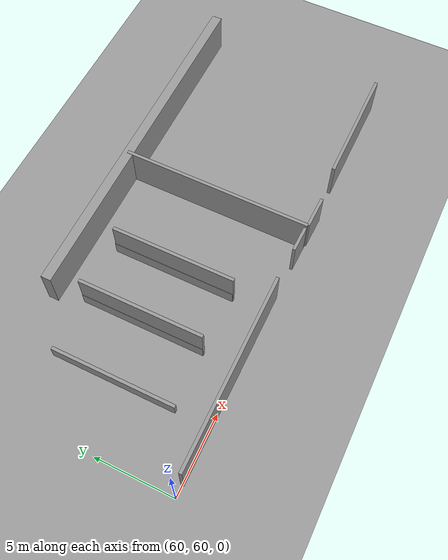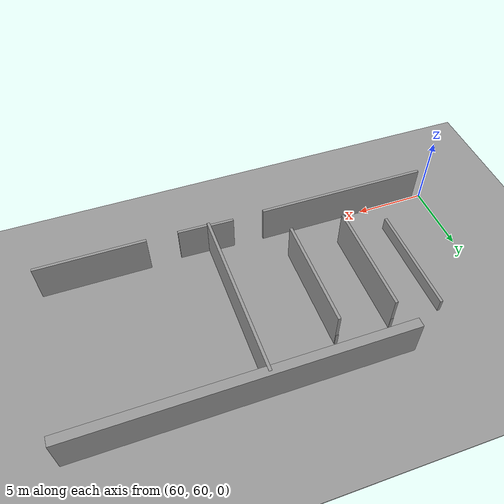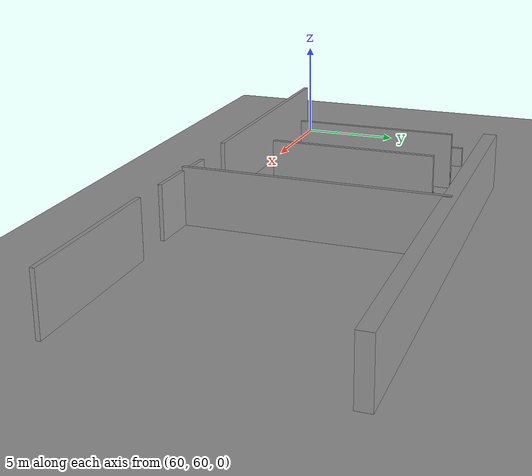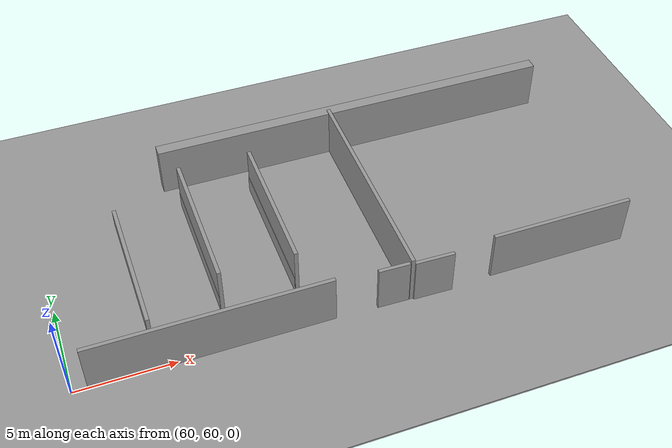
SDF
<sdf version="1.7">
 <world name="default">
  <model name="ground_plane">
   <static>1</static>
   <link name="link">
    <collision name="collision">
     <geometry><plane><normal>0 0 1</normal><size>100 100</size></plane></geometry>
     <surface><friction><ode><mu>100</mu><mu2>50</mu2></ode></friction></surface>
    </collision>
    <visual name="visual">
     <cast_shadows>0</cast_shadows>
     <geometry><plane><normal>0 0 1</normal><size>100 100</size></plane></geometry>
     <material>
      <script><uri>file://media/materials/scripts/gazebo.material</uri><name>Gazebo/Grey</name></script>
     </material>
    </visual>
   </link>
  </model>
  <model name="ground_plane_2">
   <static>1</static>
   <link name="link">
    <collision name="collision">
     <geometry><plane><normal>0 0 1</normal><size>100 100</size></plane></geometry>
     <surface><friction><ode><mu>100</mu><mu2>50</mu2></ode></friction></surface>
    </collision>
    <visual name="visual">
     <cast_shadows>0</cast_shadows>
     <geometry><plane><normal>0 0 1</normal><size>100 100</size></plane></geometry>
     <material>
      <script><uri>file://media/materials/scripts/gazebo.material</uri><name>Gazebo/Grey</name></script>
     </material>
    </visual>
   </link>
   <pose>99.3631 72.3911 0 0 -0 0</pose>
  </model>
  <model name="grey_wall_long_term_clone_0_clone">
   <link name="link">
    <pose>-1.74587 -0.378849 1.37589 0 -0 0</pose>
    <inertial>
     <inertia><ixx>0</ixx><ixy>0</ixy><ixz>0</ixz><iyy>0</iyy><iyz>0</iyz><izz>0</izz></inertia>
     <mass>0</mass>
    </inertial>
    <visual name="visual">
     <cast_shadows>0</cast_shadows>
     <geometry><box><size>22.1596 0.642976 2.8</size></box></geometry>
     <material>
      <script>
       <uri>model://grey_wall/materials/scripts</uri>
       <uri>model://grey_wall/materials/textures</uri>
       <name>vrc/grey_wall</name>
      </script>
      <shader type="pixel"><normal_map>__default__</normal_map></shader>
      <ambient>1 1 1 1</ambient>
      <diffuse>1 1 1 1</diffuse>
      <specular>0 0 0 1</specular>
      <emissive>0 0 0 1</emissive>
     </material>
    </visual>
    <collision name="collision">
     <geometry><box><size>22.1596 0.642976 2.8</size></box></geometry>
     <surface>
      <friction>
       <ode><mu>1</mu><mu2>1</mu2><fdir1>0 0 0</fdir1><slip1>0</slip1><slip2>0</slip2></ode>
       <torsional>
        <coefficient>1</coefficient>
        <patch_radius>0</patch_radius>
        <surface_radius>0</surface_radius>
        <use_patch_radius>1</use_patch_radius>
        <ode><slip>0</slip></ode>
       </torsional>
      </friction>
      <bounce><restitution_coefficient>0</restitution_coefficient><threshold>1e+06</threshold></bounce>
      <contact>
       <collide_without_contact>0</collide_without_contact>
       <collide_without_contact_bitmask>1</collide_without_contact_bitmask>
       <collide_bitmask>1</collide_bitmask>
       <ode>
        <soft_cfm>0</soft_cfm>
        <soft_erp>0.2</soft_erp>
        <kp>1e+13</kp>
        <kd>1</kd>
        <max_vel>0.01</max_vel>
        <min_depth>0</min_depth>
       </ode>
       <bullet>
        <split_impulse>1</split_impulse>
        <split_impulse_penetration_threshold>-0.01</split_impulse_penetration_threshold>
        <soft_cfm>0</soft_cfm>
        <soft_erp>0.2</soft_erp>
        <kp>1e+13</kp>
        <kd>1</kd>
       </bullet>
      </contact>
     </surface>
    </collision>
   </link>
   <static>1</static>
   <pose>79.8463 72.1693 0 0 -0 0</pose>
  </model>
  <model name="grey_wall_12m_vertial_1_clone_0">
   <link name="link">
    <pose>0.289112 -0.003891 1.4 0 0 -1.5701</pose>
    <inertial>
     <inertia><ixx>0</ixx><ixy>0</ixy><ixz>0</ixz><iyy>0</iyy><iyz>0</iyz><izz>0</izz></inertia>
     <mass>0</mass>
    </inertial>
    <visual name="visual">
     <cast_shadows>0</cast_shadows>
     <geometry><box><size>12.0527 0.2 2.8</size></box></geometry>
     <material>
      <script>
       <uri>model://grey_wall/materials/scripts</uri>
       <uri>model://grey_wall/materials/textures</uri>
       <name>vrc/grey_wall</name>
      </script>
      <shader type="pixel"/>
      <ambient>1 1 1 1</ambient>
      <diffuse>1 1 1 1</diffuse>
      <specular>0 0 0 1</specular>
      <emissive>0 0 0 1</emissive>
     </material>
    </visual>
    <collision name="collision">
     <geometry><box><size>12.0527 0.2 2.8</size></box></geometry>
     <surface>
      <friction>
       <ode><mu>1</mu><mu2>1</mu2><fdir1>0 0 0</fdir1><slip1>0</slip1><slip2>0</slip2></ode>
       <torsional>
        <coefficient>1</coefficient>
        <patch_radius>0</patch_radius>
        <surface_radius>0</surface_radius>
        <use_patch_radius>1</use_patch_radius>
        <ode><slip>0</slip></ode>
       </torsional>
      </friction>
      <bounce><restitution_coefficient>0</restitution_coefficient><threshold>1e+06</threshold></bounce>
      <contact>
       <collide_without_contact>0</collide_without_contact>
       <collide_without_contact_bitmask>1</collide_without_contact_bitmask>
       <collide_bitmask>1</collide_bitmask>
       <ode>
        <soft_cfm>0</soft_cfm>
        <soft_erp>0.2</soft_erp>
        <kp>1e+13</kp>
        <kd>1</kd>
        <max_vel>0.01</max_vel>
        <min_depth>0</min_depth>
       </ode>
       <bullet>
        <split_impulse>1</split_impulse>
        <split_impulse_penetration_threshold>-0.01</split_impulse_penetration_threshold>
        <soft_cfm>0</soft_cfm>
        <soft_erp>0.2</soft_erp>
        <kp>1e+13</kp>
        <kd>1</kd>
       </bullet>
      </contact>
     </surface>
    </collision>
   </link>
   <static>1</static>
   <pose>76.3792 65.8166 0 0 -0 0</pose>
  </model>
  <model name="grey_wall_12m_clone_1">
   <link name="link">
    <pose>0.289112 -0.003891 1.4 0 -0 0</pose>
    <inertial>
     <inertia><ixx>0</ixx><ixy>0</ixy><ixz>0</ixz><iyy>0</iyy><iyz>0</iyz><izz>0</izz></inertia>
     <mass>0</mass>
    </inertial>
    <visual name="visual">
     <cast_shadows>0</cast_shadows>
     <geometry><box><size>12.0527 0.2 2.8</size></box></geometry>
     <material>
      <script>
       <uri>model://grey_wall/materials/scripts</uri>
       <uri>model://grey_wall/materials/textures</uri>
       <name>vrc/grey_wall</name>
      </script>
      <shader type="pixel"/>
      <ambient>1 1 1 1</ambient>
      <diffuse>1 1 1 1</diffuse>
      <specular>0 0 0 1</specular>
      <emissive>0 0 0 1</emissive>
     </material>
    </visual>
    <collision name="collision">
     <geometry><box><size>12.0527 0.2 2.8</size></box></geometry>
     <surface>
      <friction>
       <ode><mu>1</mu><mu2>1</mu2><fdir1>0 0 0</fdir1><slip1>0</slip1><slip2>0</slip2></ode>
       <torsional>
        <coefficient>1</coefficient>
        <patch_radius>0</patch_radius>
        <surface_radius>0</surface_radius>
        <use_patch_radius>1</use_patch_radius>
        <ode><slip>0</slip></ode>
       </torsional>
      </friction>
      <bounce><restitution_coefficient>0</restitution_coefficient><threshold>1e+06</threshold></bounce>
      <contact>
       <collide_without_contact>0</collide_without_contact>
       <collide_without_contact_bitmask>1</collide_without_contact_bitmask>
       <collide_bitmask>1</collide_bitmask>
       <ode>
        <soft_cfm>0</soft_cfm>
        <soft_erp>0.2</soft_erp>
        <kp>1e+13</kp>
        <kd>1</kd>
        <max_vel>0.01</max_vel>
        <min_depth>0</min_depth>
       </ode>
       <bullet>
        <split_impulse>1</split_impulse>
        <split_impulse_penetration_threshold>-0.01</split_impulse_penetration_threshold>
        <soft_cfm>0</soft_cfm>
        <soft_erp>0.2</soft_erp>
        <kp>1e+13</kp>
        <kd>1</kd>
       </bullet>
      </contact>
     </surface>
    </collision>
   </link>
   <static>1</static>
   <pose>66.482 59.9942 0 0 -0 0</pose>
  </model>
  <model name="grey_wall_low_clone_7">
   <link name="link">
    <pose>0.546134 -0.568384 0.521109 0 -0 0</pose>
    <inertial>
     <inertia><ixx>0</ixx><ixy>0</ixy><ixz>0</ixz><iyy>0</iyy><iyz>0</iyz><izz>0</izz></inertia>
     <mass>0</mass>
    </inertial>
    <visual name="visual">
     <cast_shadows>0</cast_shadows>
     <geometry><box><size>7.82417 0.2 1.03493</size></box></geometry>
     <material>
      <script>
       <uri>model://grey_wall/materials/scripts</uri>
       <uri>model://grey_wall/materials/textures</uri>
       <name>vrc/grey_wall</name>
      </script>
      <shader type="pixel"/>
      <ambient>1 1 1 1</ambient>
      <diffuse>1 1 1 1</diffuse>
      <specular>0 0 0 1</specular>
      <emissive>0 0 0 1</emissive>
     </material>
    </visual>
    <collision name="collision">
     <geometry><box><size>7.82417 0.2 1.03493</size></box></geometry>
     <surface>
      <friction>
       <ode><mu>1</mu><mu2>1</mu2><fdir1>0 0 0</fdir1><slip1>0</slip1><slip2>0</slip2></ode>
       <torsional>
        <coefficient>1</coefficient>
        <patch_radius>0</patch_radius>
        <surface_radius>0</surface_radius>
        <use_patch_radius>1</use_patch_radius>
        <ode><slip>0</slip></ode>
       </torsional>
      </friction>
      <bounce><restitution_coefficient>0</restitution_coefficient><threshold>1e+06</threshold></bounce>
      <contact>
       <collide_without_contact>0</collide_without_contact>
       <collide_without_contact_bitmask>1</collide_without_contact_bitmask>
       <collide_bitmask>1</collide_bitmask>
       <ode>
        <soft_cfm>0</soft_cfm>
        <soft_erp>0.2</soft_erp>
        <kp>1e+13</kp>
        <kd>1</kd>
        <max_vel>0.01</max_vel>
        <min_depth>0</min_depth>
       </ode>
       <bullet>
        <split_impulse>1</split_impulse>
        <split_impulse_penetration_threshold>-0.01</split_impulse_penetration_threshold>
        <soft_cfm>0</soft_cfm>
        <soft_erp>0.2</soft_erp>
        <kp>1e+13</kp>
        <kd>1</kd>
       </bullet>
      </contact>
     </surface>
    </collision>
   </link>
   <static>1</static>
   <pose>64.6561 66.5667 -0 0 0 -1.56746</pose>
  </model>
  <model name="grey_wall_low_clone_8">
   <link name="link">
    <pose>0.546134 -0.568384 0.521109 0 -0 0</pose>
    <inertial>
     <inertia><ixx>0</ixx><ixy>0</ixy><ixz>0</ixz><iyy>0</iyy><iyz>0</iyz><izz>0</izz></inertia>
     <mass>0</mass>
    </inertial>
    <visual name="visual">
     <cast_shadows>0</cast_shadows>
     <geometry><box><size>7.82417 0.2 1.03493</size></box></geometry>
     <material>
      <script>
       <uri>model://grey_wall/materials/scripts</uri>
       <uri>model://grey_wall/materials/textures</uri>
       <name>vrc/grey_wall</name>
      </script>
      <shader type="pixel"/>
      <ambient>1 1 1 1</ambient>
      <diffuse>1 1 1 1</diffuse>
      <specular>0 0 0 1</specular>
      <emissive>0 0 0 1</emissive>
     </material>
    </visual>
    <collision name="collision">
     <geometry><box><size>7.82417 0.2 1.03493</size></box></geometry>
     <surface>
      <friction>
       <ode><mu>1</mu><mu2>1</mu2><fdir1>0 0 0</fdir1><slip1>0</slip1><slip2>0</slip2></ode>
       <torsional>
        <coefficient>1</coefficient>
        <patch_radius>0</patch_radius>
        <surface_radius>0</surface_radius>
        <use_patch_radius>1</use_patch_radius>
        <ode><slip>0</slip></ode>
       </torsional>
      </friction>
      <bounce><restitution_coefficient>0</restitution_coefficient><threshold>1e+06</threshold></bounce>
      <contact>
       <collide_without_contact>0</collide_without_contact>
       <collide_without_contact_bitmask>1</collide_without_contact_bitmask>
       <collide_bitmask>1</collide_bitmask>
       <ode>
        <soft_cfm>0</soft_cfm>
        <soft_erp>0.2</soft_erp>
        <kp>1e+13</kp>
        <kd>1</kd>
        <max_vel>0.01</max_vel>
        <min_depth>0</min_depth>
       </ode>
       <bullet>
        <split_impulse>1</split_impulse>
        <split_impulse_penetration_threshold>-0.01</split_impulse_penetration_threshold>
        <soft_cfm>0</soft_cfm>
        <soft_erp>0.2</soft_erp>
        <kp>1e+13</kp>
        <kd>1</kd>
       </bullet>
      </contact>
     </surface>
    </collision>
   </link>
   <static>1</static>
   <pose>68.3116 66.6864 -0 0 0 -1.56746</pose>
  </model>
  <model name="grey_wall_low_clone_9">
   <link name="link">
    <pose>0.546134 -0.568384 0.521109 0 -0 0</pose>
    <inertial>
     <inertia><ixx>0</ixx><ixy>0</ixy><ixz>0</ixz><iyy>0</iyy><iyz>0</iyz><izz>0</izz></inertia>
     <mass>0</mass>
    </inertial>
    <visual name="visual">
     <cast_shadows>0</cast_shadows>
     <geometry><box><size>7.82417 0.2 1.03493</size></box></geometry>
     <material>
      <script>
       <uri>model://grey_wall/materials/scripts</uri>
       <uri>model://grey_wall/materials/textures</uri>
       <name>vrc/grey_wall</name>
      </script>
      <shader type="pixel"/>
      <ambient>1 1 1 1</ambient>
      <diffuse>1 1 1 1</diffuse>
      <specular>0 0 0 1</specular>
      <emissive>0 0 0 1</emissive>
     </material>
    </visual>
    <collision name="collision">
     <geometry><box><size>7.82417 0.2 1.03493</size></box></geometry>
     <surface>
      <friction>
       <ode><mu>1</mu><mu2>1</mu2><fdir1>0 0 0</fdir1><slip1>0</slip1><slip2>0</slip2></ode>
       <torsional>
        <coefficient>1</coefficient>
        <patch_radius>0</patch_radius>
        <surface_radius>0</surface_radius>
        <use_patch_radius>1</use_patch_radius>
        <ode><slip>0</slip></ode>
       </torsional>
      </friction>
      <bounce><restitution_coefficient>0</restitution_coefficient><threshold>1e+06</threshold></bounce>
      <contact>
       <collide_without_contact>0</collide_without_contact>
       <collide_without_contact_bitmask>1</collide_without_contact_bitmask>
       <collide_bitmask>1</collide_bitmask>
       <ode>
        <soft_cfm>0</soft_cfm>
        <soft_erp>0.2</soft_erp>
        <kp>1e+13</kp>
        <kd>1</kd>
        <max_vel>0.01</max_vel>
        <min_depth>0</min_depth>
       </ode>
       <bullet>
        <split_impulse>1</split_impulse>
        <split_impulse_penetration_threshold>-0.01</split_impulse_penetration_threshold>
        <soft_cfm>0</soft_cfm>
        <soft_erp>0.2</soft_erp>
        <kp>1e+13</kp>
        <kd>1</kd>
       </bullet>
      </contact>
     </surface>
    </collision>
   </link>
   <static>1</static>
   <pose>72.0966 66.6291 -0 0 0 -1.56746</pose>
  </model>
  <model name="grey_wall_0_clone_clone_0">
   <static>1</static>
   <link name="link">
    <pose>0 0 1.4 0 -0 0</pose>
    <collision name="collision"><geometry><box><size>7.5 0.2 2.8</size></box></geometry></collision>
    <visual name="visual">
     <cast_shadows>0</cast_shadows>
     <geometry><box><size>7.5 0.2 2.8</size></box></geometry>
     <material>
      <script>
       <uri>model://grey_wall/materials/scripts</uri>
       <uri>model://grey_wall/materials/textures</uri>
       <name>vrc/grey_wall</name>
      </script>
     </material>
    </visual>
   </link>
   <pose>84.7389 59.8988 0 0 -0 0</pose>
  </model>
  <model name="grey_wall_high_clone_8">
   <link name="link">
    <pose>0.546134 -0.568384 0.521109 0 -0 0</pose>
    <inertial>
     <inertia><ixx>0</ixx><ixy>0</ixy><ixz>0</ixz><iyy>0</iyy><iyz>0</iyz><izz>0</izz></inertia>
     <mass>0</mass>
    </inertial>
    <visual name="visual">
     <cast_shadows>0</cast_shadows>
     <geometry><box><size>7.82417 0.2 4.57376</size></box></geometry>
     <material>
      <script>
       <uri>model://grey_wall/materials/scripts</uri>
       <uri>model://grey_wall/materials/textures</uri>
       <name>vrc/grey_wall</name>
      </script>
      <shader type="pixel"/>
      <ambient>1 1 1 1</ambient>
      <diffuse>1 1 1 1</diffuse>
      <specular>0 0 0 1</specular>
      <emissive>0 0 0 1</emissive>
     </material>
    </visual>
    <collision name="collision">
     <geometry><box><size>7.82417 0.2 4.57376</size></box></geometry>
     <surface>
      <friction>
       <ode><mu>1</mu><mu2>1</mu2><fdir1>0 0 0</fdir1><slip1>0</slip1><slip2>0</slip2></ode>
       <torsional>
        <coefficient>1</coefficient>
        <patch_radius>0</patch_radius>
        <surface_radius>0</surface_radius>
        <use_patch_radius>1</use_patch_radius>
        <ode><slip>0</slip></ode>
       </torsional>
      </friction>
      <bounce><restitution_coefficient>0</restitution_coefficient><threshold>1e+06</threshold></bounce>
      <contact>
       <collide_without_contact>0</collide_without_contact>
       <collide_without_contact_bitmask>1</collide_without_contact_bitmask>
       <collide_bitmask>1</collide_bitmask>
       <ode>
        <soft_cfm>0</soft_cfm>
        <soft_erp>0.2</soft_erp>
        <kp>1e+13</kp>
        <kd>1</kd>
        <max_vel>0.01</max_vel>
        <min_depth>0</min_depth>
       </ode>
       <bullet>
        <split_impulse>1</split_impulse>
        <split_impulse_penetration_threshold>-0.01</split_impulse_penetration_threshold>
        <soft_cfm>0</soft_cfm>
        <soft_erp>0.2</soft_erp>
        <kp>1e+13</kp>
        <kd>1</kd>
       </bullet>
      </contact>
     </surface>
    </collision>
   </link>
   <static>1</static>
   <pose>68.3243 66.6751 -0 0 0 -1.56746</pose>
  </model>
  <model name="grey_wall_high_clone_9">
   <link name="link">
    <pose>0.546134 -0.568384 0.521109 0 -0 0</pose>
    <inertial>
     <inertia><ixx>0</ixx><ixy>0</ixy><ixz>0</ixz><iyy>0</iyy><iyz>0</iyz><izz>0</izz></inertia>
     <mass>0</mass>
    </inertial>
    <visual name="visual">
     <cast_shadows>0</cast_shadows>
     <geometry><box><size>7.82417 0.2 4.57376</size></box></geometry>
     <material>
      <script>
       <uri>model://grey_wall/materials/scripts</uri>
       <uri>model://grey_wall/materials/textures</uri>
       <name>vrc/grey_wall</name>
      </script>
      <shader type="pixel"/>
      <ambient>1 1 1 1</ambient>
      <diffuse>1 1 1 1</diffuse>
      <specular>0 0 0 1</specular>
      <emissive>0 0 0 1</emissive>
     </material>
    </visual>
    <collision name="collision">
     <geometry><box><size>7.82417 0.2 4.57376</size></box></geometry>
     <surface>
      <friction>
       <ode><mu>1</mu><mu2>1</mu2><fdir1>0 0 0</fdir1><slip1>0</slip1><slip2>0</slip2></ode>
       <torsional>
        <coefficient>1</coefficient>
        <patch_radius>0</patch_radius>
        <surface_radius>0</surface_radius>
        <use_patch_radius>1</use_patch_radius>
        <ode><slip>0</slip></ode>
       </torsional>
      </friction>
      <bounce><restitution_coefficient>0</restitution_coefficient><threshold>1e+06</threshold></bounce>
      <contact>
       <collide_without_contact>0</collide_without_contact>
       <collide_without_contact_bitmask>1</collide_without_contact_bitmask>
       <collide_bitmask>1</collide_bitmask>
       <ode>
        <soft_cfm>0</soft_cfm>
        <soft_erp>0.2</soft_erp>
        <kp>1e+13</kp>
        <kd>1</kd>
        <max_vel>0.01</max_vel>
        <min_depth>0</min_depth>
       </ode>
       <bullet>
        <split_impulse>1</split_impulse>
        <split_impulse_penetration_threshold>-0.01</split_impulse_penetration_threshold>
        <soft_cfm>0</soft_cfm>
        <soft_erp>0.2</soft_erp>
        <kp>1e+13</kp>
        <kd>1</kd>
       </bullet>
      </contact>
     </surface>
    </collision>
   </link>
   <static>1</static>
   <pose>72.1201 66.6034 -0 0 0 -1.56746</pose>
  </model>
  <model name="unit_box_1">
   <pose>77.7955 59.7649 1.30828 -0 3e-06 -0.024263</pose>
   <link name="link">
    <inertial>
     <mass>1</mass>
     <inertia>
      <ixx>0.166667</ixx>
      <ixy>0</ixy>
      <ixz>0</ixz>
      <iyy>0.166667</iyy>
      <iyz>0</iyz>
      <izz>0.166667</izz>
     </inertia>
    </inertial>
    <collision name="collision"><geometry><box><size>2.03804 0.18582 2.61657</size></box></geometry></collision>
    <visual name="visual">
     <geometry><box><size>2.03804 0.18582 2.61657</size></box></geometry>
     <material>
      <script><name>Gazebo/Grey</name><uri>file://media/materials/scripts/gazebo.material</uri></script>
     </material>
    </visual>
   </link>
  </model>
  <model name="unit_box_1_clone">
   <pose>75.7332 59.8865 1.30828 0 1e-06 -0.021627</pose>
   <link name="link">
    <inertial>
     <mass>1</mass>
     <inertia>
      <ixx>0.166667</ixx>
      <ixy>0</ixy>
      <ixz>0</ixz>
      <iyy>0.166667</iyy>
      <iyz>0</iyz>
      <izz>0.166667</izz>
     </inertia>
    </inertial>
    <collision name="collision"><geometry><box><size>1.61404 0.18582 2.61657</size></box></geometry></collision>
    <visual name="visual">
     <geometry><box><size>1.61404 0.18582 2.61657</size></box></geometry>
     <material>
      <script><name>Gazebo/Grey</name><uri>file://media/materials/scripts/gazebo.material</uri></script>
     </material>
    </visual>
   </link>
  </model>
 </world>
</sdf>
